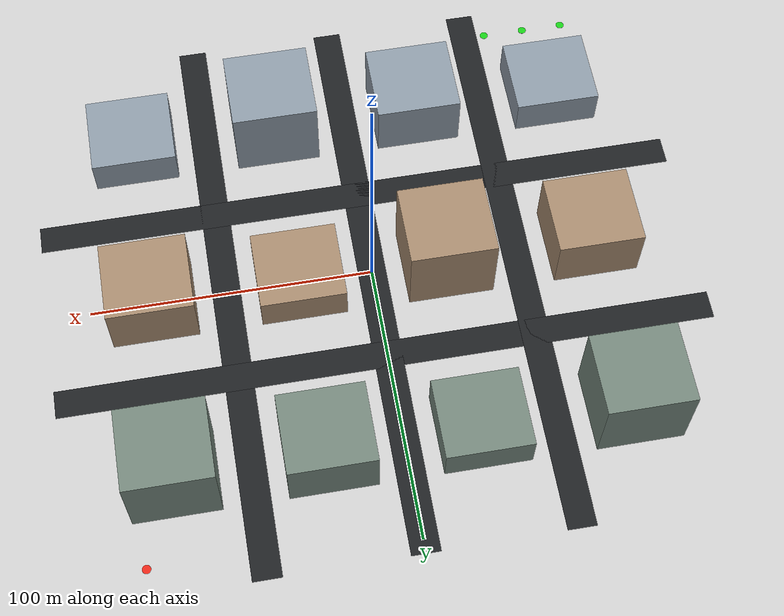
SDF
<?xml version="1.0"?>
<sdf version="1.6"><world name="outdoor_urban">
  <physics name="default_physics" type="ode"><max_step_size>0.004</max_step_size><real_time_factor>1</real_time_factor><real_time_update_rate>250</real_time_update_rate><magnetic_field>6.0e-6 2.3e-5 -4.2e-5</magnetic_field></physics>
  <gravity>0 0 -9.8066</gravity>
  <include><uri>model://sun</uri></include>
  <include><uri>model://ground_plane</uri></include>
  <spherical_coordinates><surface_model>EARTH_WGS84</surface_model><latitude_deg>47.397742</latitude_deg><longitude_deg>8.545594</longitude_deg><elevation>488</elevation><heading_deg>0</heading_deg></spherical_coordinates>
<model name="road_0"><static>true</static><pose>0.000 -32.500 0.012 0.000 0.000 0.000</pose><link name="link"><visual name="visual"><cast_shadows>false</cast_shadows><geometry><box><size>230 10 0.02</size></box></geometry><material><ambient>0.12 0.13 0.14 1</ambient><diffuse>0.12 0.13 0.14 1</diffuse></material></visual></link></model>
<model name="road_1"><static>true</static><pose>0.000 32.500 0.012 0.000 0.000 0.000</pose><link name="link"><visual name="visual"><cast_shadows>false</cast_shadows><geometry><box><size>230 10 0.02</size></box></geometry><material><ambient>0.12 0.13 0.14 1</ambient><diffuse>0.12 0.13 0.14 1</diffuse></material></visual></link></model>
<model name="road_2"><static>true</static><pose>-52.000 0.000 0.012 0.000 0.000 0.000</pose><link name="link"><visual name="visual"><cast_shadows>false</cast_shadows><geometry><box><size>10 210 0.02</size></box></geometry><material><ambient>0.12 0.13 0.14 1</ambient><diffuse>0.12 0.13 0.14 1</diffuse></material></visual></link></model>
<model name="road_3"><static>true</static><pose>0.000 0.000 0.012 0.000 0.000 0.000</pose><link name="link"><visual name="visual"><cast_shadows>false</cast_shadows><geometry><box><size>10 210 0.02</size></box></geometry><material><ambient>0.12 0.13 0.14 1</ambient><diffuse>0.12 0.13 0.14 1</diffuse></material></visual></link></model>
<model name="road_4"><static>true</static><pose>52.000 0.000 0.012 0.000 0.000 0.000</pose><link name="link"><visual name="visual"><cast_shadows>false</cast_shadows><geometry><box><size>10 210 0.02</size></box></geometry><material><ambient>0.12 0.13 0.14 1</ambient><diffuse>0.12 0.13 0.14 1</diffuse></material></visual></link></model>
<model name="building_0"><static>true</static><pose>-78.000 -65.000 7.000 0 0 0</pose><link name="link"><collision name="collision"><geometry><box><size>30 28 14</size></box></geometry></collision><visual name="visual"><geometry><box><size>30 28 14</size></box></geometry><material><ambient>0.55 0.60 0.65 1</ambient><diffuse>0.55 0.60 0.65 1</diffuse></material></visual></link></model>
<model name="building_1"><static>true</static><pose>-78.000 0.000 11.000 0 0 0</pose><link name="link"><collision name="collision"><geometry><box><size>30 28 22</size></box></geometry></collision><visual name="visual"><geometry><box><size>30 28 22</size></box></geometry><material><ambient>0.65 0.54 0.43 1</ambient><diffuse>0.65 0.54 0.43 1</diffuse></material></visual></link></model>
<model name="building_2"><static>true</static><pose>-78.000 65.000 15.000 0 0 0</pose><link name="link"><collision name="collision"><geometry><box><size>30 28 30</size></box></geometry></collision><visual name="visual"><geometry><box><size>30 28 30</size></box></geometry><material><ambient>0.45 0.52 0.48 1</ambient><diffuse>0.45 0.52 0.48 1</diffuse></material></visual></link></model>
<model name="building_3"><static>true</static><pose>-26.000 -65.000 11.000 0 0 0</pose><link name="link"><collision name="collision"><geometry><box><size>30 28 22</size></box></geometry></collision><visual name="visual"><geometry><box><size>30 28 22</size></box></geometry><material><ambient>0.55 0.60 0.65 1</ambient><diffuse>0.55 0.60 0.65 1</diffuse></material></visual></link></model>
<model name="building_4"><static>true</static><pose>-26.000 0.000 15.000 0 0 0</pose><link name="link"><collision name="collision"><geometry><box><size>30 28 30</size></box></geometry></collision><visual name="visual"><geometry><box><size>30 28 30</size></box></geometry><material><ambient>0.65 0.54 0.43 1</ambient><diffuse>0.65 0.54 0.43 1</diffuse></material></visual></link></model>
<model name="building_5"><static>true</static><pose>-26.000 65.000 7.000 0 0 0</pose><link name="link"><collision name="collision"><geometry><box><size>30 28 14</size></box></geometry></collision><visual name="visual"><geometry><box><size>30 28 14</size></box></geometry><material><ambient>0.45 0.52 0.48 1</ambient><diffuse>0.45 0.52 0.48 1</diffuse></material></visual></link></model>
<model name="building_6"><static>true</static><pose>26.000 -65.000 15.000 0 0 0</pose><link name="link"><collision name="collision"><geometry><box><size>30 28 30</size></box></geometry></collision><visual name="visual"><geometry><box><size>30 28 30</size></box></geometry><material><ambient>0.55 0.60 0.65 1</ambient><diffuse>0.55 0.60 0.65 1</diffuse></material></visual></link></model>
<model name="building_7"><static>true</static><pose>26.000 0.000 7.000 0 0 0</pose><link name="link"><collision name="collision"><geometry><box><size>30 28 14</size></box></geometry></collision><visual name="visual"><geometry><box><size>30 28 14</size></box></geometry><material><ambient>0.65 0.54 0.43 1</ambient><diffuse>0.65 0.54 0.43 1</diffuse></material></visual></link></model>
<model name="building_8"><static>true</static><pose>26.000 65.000 11.000 0 0 0</pose><link name="link"><collision name="collision"><geometry><box><size>30 28 22</size></box></geometry></collision><visual name="visual"><geometry><box><size>30 28 22</size></box></geometry><material><ambient>0.45 0.52 0.48 1</ambient><diffuse>0.45 0.52 0.48 1</diffuse></material></visual></link></model>
<model name="building_9"><static>true</static><pose>78.000 -65.000 7.000 0 0 0</pose><link name="link"><collision name="collision"><geometry><box><size>30 28 14</size></box></geometry></collision><visual name="visual"><geometry><box><size>30 28 14</size></box></geometry><material><ambient>0.55 0.60 0.65 1</ambient><diffuse>0.55 0.60 0.65 1</diffuse></material></visual></link></model>
<model name="building_10"><static>true</static><pose>78.000 0.000 11.000 0 0 0</pose><link name="link"><collision name="collision"><geometry><box><size>30 28 22</size></box></geometry></collision><visual name="visual"><geometry><box><size>30 28 22</size></box></geometry><material><ambient>0.65 0.54 0.43 1</ambient><diffuse>0.65 0.54 0.43 1</diffuse></material></visual></link></model>
<model name="building_11"><static>true</static><pose>78.000 65.000 15.000 0 0 0</pose><link name="link"><collision name="collision"><geometry><box><size>30 28 30</size></box></geometry></collision><visual name="visual"><geometry><box><size>30 28 30</size></box></geometry><material><ambient>0.45 0.52 0.48 1</ambient><diffuse>0.45 0.52 0.48 1</diffuse></material></visual></link></model>
<model name="start_zone"><static>true</static><pose>-90.000 -95.000 -0.009 0.000 0.000 0.000</pose><link name="link"><visual name="visual"><cast_shadows>false</cast_shadows><geometry><cylinder><radius>1.5</radius><length>0.02</length></cylinder></geometry><material><ambient>0.1 0.8 0.1 1</ambient><diffuse>0.1 0.8 0.1 1</diffuse></material></visual></link></model>
<model name="uav_pad_1"><static>true</static><pose>-75.000 -95.000 -0.009 0.000 0.000 0.000</pose><link name="link"><visual name="visual"><cast_shadows>false</cast_shadows><geometry><cylinder><radius>1.5</radius><length>0.02</length></cylinder></geometry><material><ambient>0.1 0.8 0.1 1</ambient><diffuse>0.1 0.8 0.1 1</diffuse></material></visual></link></model>
<model name="uav_pad_2"><static>true</static><pose>-60.000 -95.000 -0.009 0.000 0.000 0.000</pose><link name="link"><visual name="visual"><cast_shadows>false</cast_shadows><geometry><cylinder><radius>1.5</radius><length>0.02</length></cylinder></geometry><material><ambient>0.1 0.8 0.1 1</ambient><diffuse>0.1 0.8 0.1 1</diffuse></material></visual></link></model>
<model name="goal_zone"><static>true</static><pose>90.000 95.000 -0.009 0.000 0.000 0.000</pose><link name="link"><visual name="visual"><cast_shadows>false</cast_shadows><geometry><cylinder><radius>1.5</radius><length>0.02</length></cylinder></geometry><material><ambient>0.9 0.15 0.1 1</ambient><diffuse>0.9 0.15 0.1 1</diffuse></material></visual></link></model>
</world></sdf>
